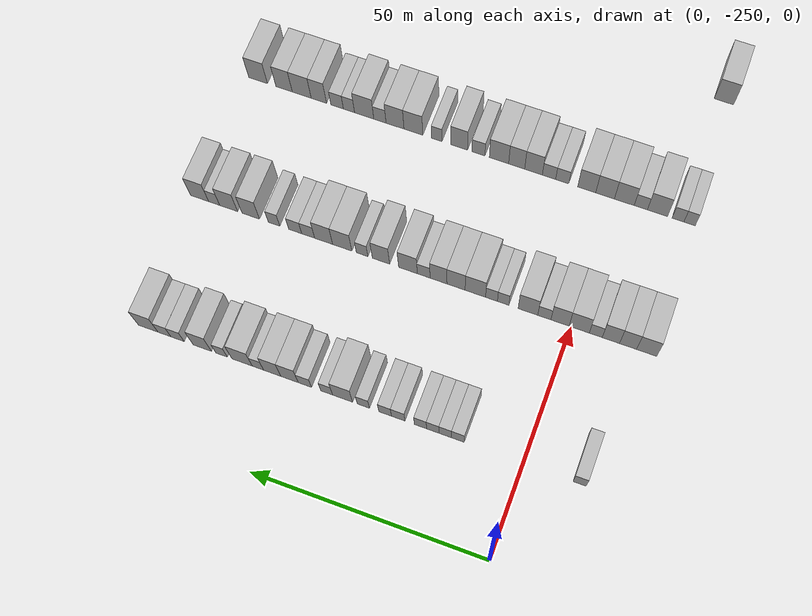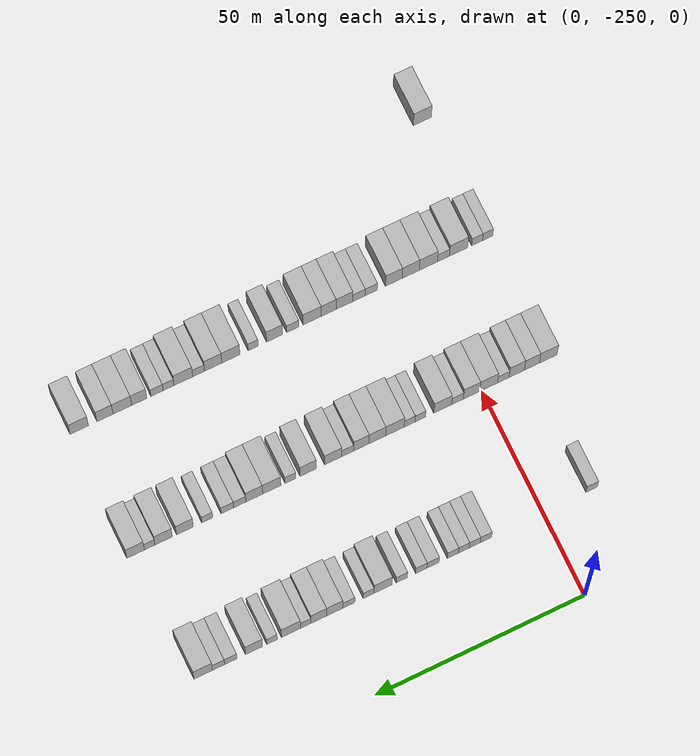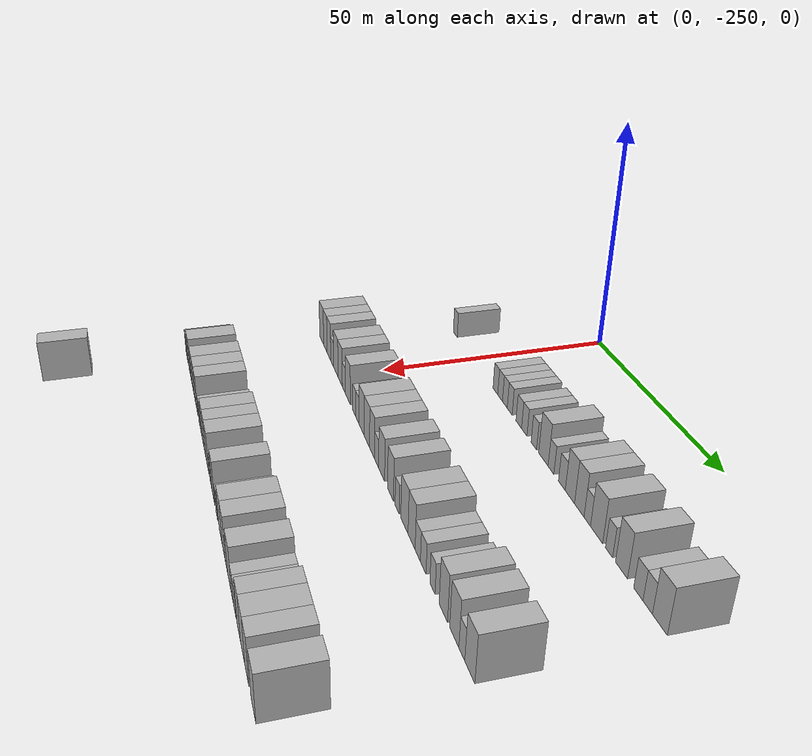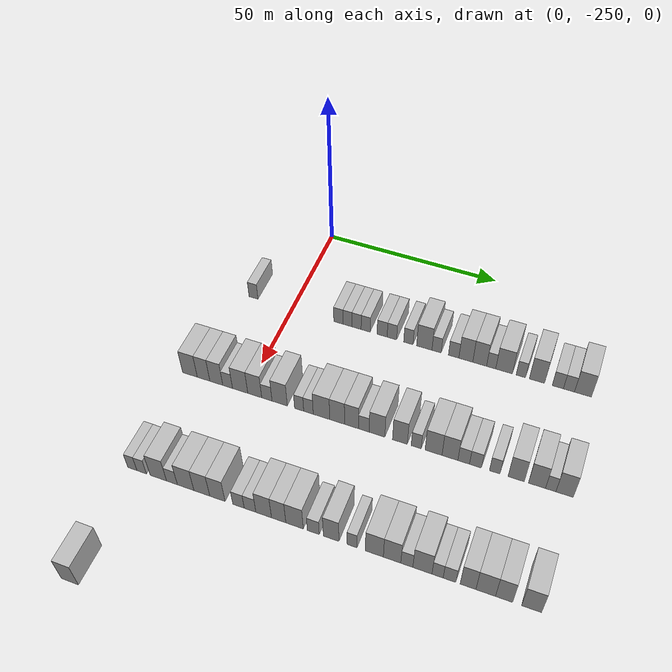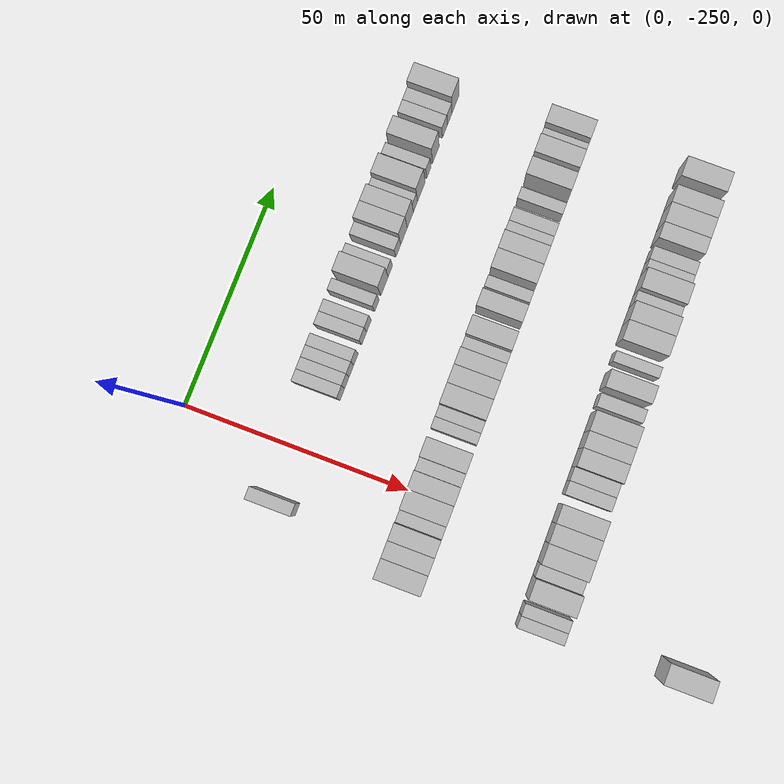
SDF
<sdf version="1.6">
 <world name="default">
  <model name="building_50">
   <static>1</static>
   <pose>25.0000 -261.6594 0 0.000000 0.000000 0.000000</pose>
   <link name="link">
    <pose>0 0 3.00 0 0 0</pose>
    <collision name="collision"><geometry><box><size>10.0000 2.7300 6.0000</size></box></geometry></collision>
    <visual name="visual">
     <cast_shadows>0</cast_shadows>
     <geometry><box><size>10.0000 2.7300 6.0000</size></box></geometry>
     <material>
      <script>
       <uri>model://HANNAS_wall/materials/scripts</uri>
       <uri>model://HANNAS_wall/materials/textures</uri>
       <name>vrc/HANNAS_wall</name>
      </script>
     </material>
    </visual>
   </link>
  </model>
  <model name="building_51">
   <static>1</static>
   <pose>25.0000 -236.2461 0 0.000000 0.000000 0.000000</pose>
   <link name="link">
    <pose>0 0 3.00 0 0 0</pose>
    <collision name="collision"><geometry><box><size>10.0000 2.6988 6.0000</size></box></geometry></collision>
    <visual name="visual">
     <cast_shadows>0</cast_shadows>
     <geometry><box><size>10.0000 2.6988 6.0000</size></box></geometry>
     <material>
      <script>
       <uri>model://HANNAS_wall/materials/scripts</uri>
       <uri>model://HANNAS_wall/materials/textures</uri>
       <name>vrc/HANNAS_wall</name>
      </script>
     </material>
    </visual>
   </link>
  </model>
  <model name="building_52">
   <static>1</static>
   <pose>25.0000 -233.5793 0 0.000000 0.000000 0.000000</pose>
   <link name="link">
    <pose>0 0 3.00 0 0 0</pose>
    <collision name="collision"><geometry><box><size>10.0000 2.6348 6.0000</size></box></geometry></collision>
    <visual name="visual">
     <cast_shadows>0</cast_shadows>
     <geometry><box><size>10.0000 2.6348 6.0000</size></box></geometry>
     <material>
      <script>
       <uri>model://HANNAS_wall/materials/scripts</uri>
       <uri>model://HANNAS_wall/materials/textures</uri>
       <name>vrc/HANNAS_wall</name>
      </script>
     </material>
    </visual>
   </link>
  </model>
  <model name="building_53">
   <static>1</static>
   <pose>25.0000 -230.9478 0 0.000000 0.000000 0.000000</pose>
   <link name="link">
    <pose>0 0 3.00 0 0 0</pose>
    <collision name="collision"><geometry><box><size>10.0000 2.6281 6.0000</size></box></geometry></collision>
    <visual name="visual">
     <cast_shadows>0</cast_shadows>
     <geometry><box><size>10.0000 2.6281 6.0000</size></box></geometry>
     <material>
      <script>
       <uri>model://HANNAS_wall/materials/scripts</uri>
       <uri>model://HANNAS_wall/materials/textures</uri>
       <name>vrc/HANNAS_wall</name>
      </script>
     </material>
    </visual>
   </link>
  </model>
  <model name="building_54">
   <static>1</static>
   <pose>25.0000 -228.3338 0 0.000000 0.000000 0.000000</pose>
   <link name="link">
    <pose>0 0 3.00 0 0 0</pose>
    <collision name="collision"><geometry><box><size>10.0000 2.5999 6.0000</size></box></geometry></collision>
    <visual name="visual">
     <cast_shadows>0</cast_shadows>
     <geometry><box><size>10.0000 2.5999 6.0000</size></box></geometry>
     <material>
      <script>
       <uri>model://HANNAS_wall/materials/scripts</uri>
       <uri>model://HANNAS_wall/materials/textures</uri>
       <name>vrc/HANNAS_wall</name>
      </script>
     </material>
    </visual>
   </link>
  </model>
  <model name="building_55">
   <static>1</static>
   <pose>25.0000 -223.5923 0 0.000000 0.000000 0.000000</pose>
   <link name="link">
    <pose>0 0 3.00 0 0 0</pose>
    <collision name="collision"><geometry><box><size>10.0000 2.8830 6.0000</size></box></geometry></collision>
    <visual name="visual">
     <cast_shadows>0</cast_shadows>
     <geometry><box><size>10.0000 2.8830 6.0000</size></box></geometry>
     <material>
      <script>
       <uri>model://HANNAS_wall/materials/scripts</uri>
       <uri>model://HANNAS_wall/materials/textures</uri>
       <name>vrc/HANNAS_wall</name>
      </script>
     </material>
    </visual>
   </link>
  </model>
  <model name="building_56">
   <static>1</static>
   <pose>25.0000 -220.8001 0 0.000000 0.000000 0.000000</pose>
   <link name="link">
    <pose>0 0 3.00 0 0 0</pose>
    <collision name="collision"><geometry><box><size>10.0000 2.7013 6.0000</size></box></geometry></collision>
    <visual name="visual">
     <cast_shadows>0</cast_shadows>
     <geometry><box><size>10.0000 2.7013 6.0000</size></box></geometry>
     <material>
      <script>
       <uri>model://HANNAS_wall/materials/scripts</uri>
       <uri>model://HANNAS_wall/materials/textures</uri>
       <name>vrc/HANNAS_wall</name>
      </script>
     </material>
    </visual>
   </link>
  </model>
  <model name="building_57">
   <static>1</static>
   <pose>25.0000 -216.1334 0 0.000000 0.000000 0.000000</pose>
   <link name="link">
    <pose>0 0 3.00 0 0 0</pose>
    <collision name="collision"><geometry><box><size>10.0000 2.6322 6.0000</size></box></geometry></collision>
    <visual name="visual">
     <cast_shadows>0</cast_shadows>
     <geometry><box><size>10.0000 2.6322 6.0000</size></box></geometry>
     <material>
      <script>
       <uri>model://HANNAS_wall/materials/scripts</uri>
       <uri>model://HANNAS_wall/materials/textures</uri>
       <name>vrc/HANNAS_wall</name>
      </script>
     </material>
    </visual>
   </link>
  </model>
  <model name="building_58">
   <static>1</static>
   <pose>25.0000 -211.6618 0 0.000000 0.000000 0.000000</pose>
   <link name="link">
    <pose>0 0 4.50 0 0 0</pose>
    <collision name="collision"><geometry><box><size>10.0000 4.3110 9.0000</size></box></geometry></collision>
    <visual name="visual">
     <cast_shadows>0</cast_shadows>
     <geometry><box><size>10.0000 4.3110 9.0000</size></box></geometry>
     <material>
      <script>
       <uri>model://HANNAS_wall/materials/scripts</uri>
       <uri>model://HANNAS_wall/materials/textures</uri>
       <name>vrc/HANNAS_wall</name>
      </script>
     </material>
    </visual>
   </link>
  </model>
  <model name="building_59">
   <static>1</static>
   <pose>25.0000 -208.2244 0 0.000000 0.000000 0.000000</pose>
   <link name="link">
    <pose>0 0 3.00 0 0 0</pose>
    <collision name="collision"><geometry><box><size>10.0000 2.5638 6.0000</size></box></geometry></collision>
    <visual name="visual">
     <cast_shadows>0</cast_shadows>
     <geometry><box><size>10.0000 2.5638 6.0000</size></box></geometry>
     <material>
      <script>
       <uri>model://HANNAS_wall/materials/scripts</uri>
       <uri>model://HANNAS_wall/materials/textures</uri>
       <name>vrc/HANNAS_wall</name>
      </script>
     </material>
    </visual>
   </link>
  </model>
  <model name="building_60">
   <static>1</static>
   <pose>25.0000 -203.4989 0 0.000000 0.000000 0.000000</pose>
   <link name="link">
    <pose>0 0 3.00 0 0 0</pose>
    <collision name="collision"><geometry><box><size>10.0000 2.8872 6.0000</size></box></geometry></collision>
    <visual name="visual">
     <cast_shadows>0</cast_shadows>
     <geometry><box><size>10.0000 2.8872 6.0000</size></box></geometry>
     <material>
      <script>
       <uri>model://HANNAS_wall/materials/scripts</uri>
       <uri>model://HANNAS_wall/materials/textures</uri>
       <name>vrc/HANNAS_wall</name>
      </script>
     </material>
    </visual>
   </link>
  </model>
  <model name="building_61">
   <static>1</static>
   <pose>25.0000 -200.1517 0 0.000000 0.000000 0.000000</pose>
   <link name="link">
    <pose>0 0 4.50 0 0 0</pose>
    <collision name="collision"><geometry><box><size>10.0000 3.8070 9.0000</size></box></geometry></collision>
    <visual name="visual">
     <cast_shadows>0</cast_shadows>
     <geometry><box><size>10.0000 3.8070 9.0000</size></box></geometry>
     <material>
      <script>
       <uri>model://HANNAS_wall/materials/scripts</uri>
       <uri>model://HANNAS_wall/materials/textures</uri>
       <name>vrc/HANNAS_wall</name>
      </script>
     </material>
    </visual>
   </link>
  </model>
  <model name="building_62">
   <static>1</static>
   <pose>25.0000 -196.3673 0 0.000000 0.000000 0.000000</pose>
   <link name="link">
    <pose>0 0 4.50 0 0 0</pose>
    <collision name="collision"><geometry><box><size>10.0000 3.7619 9.0000</size></box></geometry></collision>
    <visual name="visual">
     <cast_shadows>0</cast_shadows>
     <geometry><box><size>10.0000 3.7619 9.0000</size></box></geometry>
     <material>
      <script>
       <uri>model://HANNAS_wall/materials/scripts</uri>
       <uri>model://HANNAS_wall/materials/textures</uri>
       <name>vrc/HANNAS_wall</name>
      </script>
     </material>
    </visual>
   </link>
  </model>
  <model name="building_63">
   <static>1</static>
   <pose>25.0000 -193.2477 0 0.000000 0.000000 0.000000</pose>
   <link name="link">
    <pose>0 0 3.00 0 0 0</pose>
    <collision name="collision"><geometry><box><size>10.0000 2.4773 6.0000</size></box></geometry></collision>
    <visual name="visual">
     <cast_shadows>0</cast_shadows>
     <geometry><box><size>10.0000 2.4773 6.0000</size></box></geometry>
     <material>
      <script>
       <uri>model://HANNAS_wall/materials/scripts</uri>
       <uri>model://HANNAS_wall/materials/textures</uri>
       <name>vrc/HANNAS_wall</name>
      </script>
     </material>
    </visual>
   </link>
  </model>
  <model name="building_64">
   <static>1</static>
   <pose>25.0000 -189.7666 0 0.000000 0.000000 0.000000</pose>
   <link name="link">
    <pose>0 0 4.50 0 0 0</pose>
    <collision name="collision"><geometry><box><size>10.0000 4.4851 9.0000</size></box></geometry></collision>
    <visual name="visual">
     <cast_shadows>0</cast_shadows>
     <geometry><box><size>10.0000 4.4851 9.0000</size></box></geometry>
     <material>
      <script>
       <uri>model://HANNAS_wall/materials/scripts</uri>
       <uri>model://HANNAS_wall/materials/textures</uri>
       <name>vrc/HANNAS_wall</name>
      </script>
     </material>
    </visual>
   </link>
  </model>
  <model name="building_65">
   <static>1</static>
   <pose>25.0000 -185.2671 0 0.000000 0.000000 0.000000</pose>
   <link name="link">
    <pose>0 0 3.00 0 0 0</pose>
    <collision name="collision"><geometry><box><size>10.0000 2.5139 6.0000</size></box></geometry></collision>
    <visual name="visual">
     <cast_shadows>0</cast_shadows>
     <geometry><box><size>10.0000 2.5139 6.0000</size></box></geometry>
     <material>
      <script>
       <uri>model://HANNAS_wall/materials/scripts</uri>
       <uri>model://HANNAS_wall/materials/textures</uri>
       <name>vrc/HANNAS_wall</name>
      </script>
     </material>
    </visual>
   </link>
  </model>
  <model name="building_66">
   <static>1</static>
   <pose>25.0000 -180.9905 0 0.000000 0.000000 0.000000</pose>
   <link name="link">
    <pose>0 0 4.50 0 0 0</pose>
    <collision name="collision"><geometry><box><size>10.0000 4.0393 9.0000</size></box></geometry></collision>
    <visual name="visual">
     <cast_shadows>0</cast_shadows>
     <geometry><box><size>10.0000 4.0393 9.0000</size></box></geometry>
     <material>
      <script>
       <uri>model://HANNAS_wall/materials/scripts</uri>
       <uri>model://HANNAS_wall/materials/textures</uri>
       <name>vrc/HANNAS_wall</name>
      </script>
     </material>
    </visual>
   </link>
  </model>
  <model name="building_67">
   <static>1</static>
   <pose>25.0000 -175.5025 0 0.000000 0.000000 0.000000</pose>
   <link name="link">
    <pose>0 0 3.00 0 0 0</pose>
    <collision name="collision"><geometry><box><size>10.0000 2.9368 6.0000</size></box></geometry></collision>
    <visual name="visual">
     <cast_shadows>0</cast_shadows>
     <geometry><box><size>10.0000 2.9368 6.0000</size></box></geometry>
     <material>
      <script>
       <uri>model://HANNAS_wall/materials/scripts</uri>
       <uri>model://HANNAS_wall/materials/textures</uri>
       <name>vrc/HANNAS_wall</name>
      </script>
     </material>
    </visual>
   </link>
  </model>
  <model name="building_68">
   <static>1</static>
   <pose>25.0000 -172.5925 0 0.000000 0.000000 0.000000</pose>
   <link name="link">
    <pose>0 0 3.00 0 0 0</pose>
    <collision name="collision"><geometry><box><size>10.0000 2.8830 6.0000</size></box></geometry></collision>
    <visual name="visual">
     <cast_shadows>0</cast_shadows>
     <geometry><box><size>10.0000 2.8830 6.0000</size></box></geometry>
     <material>
      <script>
       <uri>model://HANNAS_wall/materials/scripts</uri>
       <uri>model://HANNAS_wall/materials/textures</uri>
       <name>vrc/HANNAS_wall</name>
      </script>
     </material>
    </visual>
   </link>
  </model>
  <model name="building_69">
   <static>1</static>
   <pose>25.0000 -168.9584 0 0.000000 0.000000 0.000000</pose>
   <link name="link">
    <pose>0 0 4.50 0 0 0</pose>
    <collision name="collision"><geometry><box><size>10.0000 4.3853 9.0000</size></box></geometry></collision>
    <visual name="visual">
     <cast_shadows>0</cast_shadows>
     <geometry><box><size>10.0000 4.3853 9.0000</size></box></geometry>
     <material>
      <script>
       <uri>model://HANNAS_wall/materials/scripts</uri>
       <uri>model://HANNAS_wall/materials/textures</uri>
       <name>vrc/HANNAS_wall</name>
      </script>
     </material>
    </visual>
   </link>
  </model>
  <model name="building_277">
   <static>1</static>
   <pose>55.0000 -266.1159 0 0.000000 0.000000 0.000000</pose>
   <link name="link">
    <pose>0 0 4.50 0 0 0</pose>
    <collision name="collision"><geometry><box><size>10.0000 4.2751 9.0000</size></box></geometry></collision>
    <visual name="visual">
     <cast_shadows>0</cast_shadows>
     <geometry><box><size>10.0000 4.2751 9.0000</size></box></geometry>
     <material>
      <script>
       <uri>model://HANNAS_wall/materials/scripts</uri>
       <uri>model://HANNAS_wall/materials/textures</uri>
       <name>vrc/HANNAS_wall</name>
      </script>
     </material>
    </visual>
   </link>
  </model>
  <model name="building_278">
   <static>1</static>
   <pose>55.0000 -262.1607 0 0.000000 0.000000 0.000000</pose>
   <link name="link">
    <pose>0 0 4.50 0 0 0</pose>
    <collision name="collision"><geometry><box><size>10.0000 3.6353 9.0000</size></box></geometry></collision>
    <visual name="visual">
     <cast_shadows>0</cast_shadows>
     <geometry><box><size>10.0000 3.6353 9.0000</size></box></geometry>
     <material>
      <script>
       <uri>model://HANNAS_wall/materials/scripts</uri>
       <uri>model://HANNAS_wall/materials/textures</uri>
       <name>vrc/HANNAS_wall</name>
      </script>
     </material>
    </visual>
   </link>
  </model>
  <model name="building_279">
   <static>1</static>
   <pose>55.0000 -258.4951 0 0.000000 0.000000 0.000000</pose>
   <link name="link">
    <pose>0 0 4.50 0 0 0</pose>
    <collision name="collision"><geometry><box><size>10.0000 3.6959 9.0000</size></box></geometry></collision>
    <visual name="visual">
     <cast_shadows>0</cast_shadows>
     <geometry><box><size>10.0000 3.6959 9.0000</size></box></geometry>
     <material>
      <script>
       <uri>model://HANNAS_wall/materials/scripts</uri>
       <uri>model://HANNAS_wall/materials/textures</uri>
       <name>vrc/HANNAS_wall</name>
      </script>
     </material>
    </visual>
   </link>
  </model>
  <model name="building_280">
   <static>1</static>
   <pose>55.0000 -255.2587 0 0.000000 0.000000 0.000000</pose>
   <link name="link">
    <pose>0 0 3.00 0 0 0</pose>
    <collision name="collision"><geometry><box><size>10.0000 2.7768 6.0000</size></box></geometry></collision>
    <visual name="visual">
     <cast_shadows>0</cast_shadows>
     <geometry><box><size>10.0000 2.7768 6.0000</size></box></geometry>
     <material>
      <script>
       <uri>model://HANNAS_wall/materials/scripts</uri>
       <uri>model://HANNAS_wall/materials/textures</uri>
       <name>vrc/HANNAS_wall</name>
      </script>
     </material>
    </visual>
   </link>
  </model>
  <model name="building_281">
   <static>1</static>
   <pose>55.0000 -251.7073 0 0.000000 0.000000 0.000000</pose>
   <link name="link">
    <pose>0 0 4.50 0 0 0</pose>
    <collision name="collision"><geometry><box><size>10.0000 4.3260 9.0000</size></box></geometry></collision>
    <visual name="visual">
     <cast_shadows>0</cast_shadows>
     <geometry><box><size>10.0000 4.3260 9.0000</size></box></geometry>
     <material>
      <script>
       <uri>model://HANNAS_wall/materials/scripts</uri>
       <uri>model://HANNAS_wall/materials/textures</uri>
       <name>vrc/HANNAS_wall</name>
      </script>
     </material>
    </visual>
   </link>
  </model>
  <model name="building_282">
   <static>1</static>
   <pose>55.0000 -247.5823 0 0.000000 0.000000 0.000000</pose>
   <link name="link">
    <pose>0 0 4.50 0 0 0</pose>
    <collision name="collision"><geometry><box><size>10.0000 3.9239 9.0000</size></box></geometry></collision>
    <visual name="visual">
     <cast_shadows>0</cast_shadows>
     <geometry><box><size>10.0000 3.9239 9.0000</size></box></geometry>
     <material>
      <script>
       <uri>model://HANNAS_wall/materials/scripts</uri>
       <uri>model://HANNAS_wall/materials/textures</uri>
       <name>vrc/HANNAS_wall</name>
      </script>
     </material>
    </visual>
   </link>
  </model>
  <model name="building_283">
   <static>1</static>
   <pose>55.0000 -244.1858 0 0.000000 0.000000 0.000000</pose>
   <link name="link">
    <pose>0 0 3.00 0 0 0</pose>
    <collision name="collision"><geometry><box><size>10.0000 2.8692 6.0000</size></box></geometry></collision>
    <visual name="visual">
     <cast_shadows>0</cast_shadows>
     <geometry><box><size>10.0000 2.8692 6.0000</size></box></geometry>
     <material>
      <script>
       <uri>model://HANNAS_wall/materials/scripts</uri>
       <uri>model://HANNAS_wall/materials/textures</uri>
       <name>vrc/HANNAS_wall</name>
      </script>
     </material>
    </visual>
   </link>
  </model>
  <model name="building_284">
   <static>1</static>
   <pose>55.0000 -240.6268 0 0.000000 0.000000 0.000000</pose>
   <link name="link">
    <pose>0 0 4.50 0 0 0</pose>
    <collision name="collision"><geometry><box><size>10.0000 4.2486 9.0000</size></box></geometry></collision>
    <visual name="visual">
     <cast_shadows>0</cast_shadows>
     <geometry><box><size>10.0000 4.2486 9.0000</size></box></geometry>
     <material>
      <script>
       <uri>model://HANNAS_wall/materials/scripts</uri>
       <uri>model://HANNAS_wall/materials/textures</uri>
       <name>vrc/HANNAS_wall</name>
      </script>
     </material>
    </visual>
   </link>
  </model>
  <model name="building_285">
   <static>1</static>
   <pose>55.0000 -235.2520 0 0.000000 0.000000 0.000000</pose>
   <link name="link">
    <pose>0 0 3.00 0 0 0</pose>
    <collision name="collision"><geometry><box><size>10.0000 2.5011 6.0000</size></box></geometry></collision>
    <visual name="visual">
     <cast_shadows>0</cast_shadows>
     <geometry><box><size>10.0000 2.5011 6.0000</size></box></geometry>
     <material>
      <script>
       <uri>model://HANNAS_wall/materials/scripts</uri>
       <uri>model://HANNAS_wall/materials/textures</uri>
       <name>vrc/HANNAS_wall</name>
      </script>
     </material>
    </visual>
   </link>
  </model>
  <model name="building_286">
   <static>1</static>
   <pose>55.0000 -232.7032 0 0.000000 0.000000 0.000000</pose>
   <link name="link">
    <pose>0 0 3.00 0 0 0</pose>
    <collision name="collision"><geometry><box><size>10.0000 2.5964 6.0000</size></box></geometry></collision>
    <visual name="visual">
     <cast_shadows>0</cast_shadows>
     <geometry><box><size>10.0000 2.5964 6.0000</size></box></geometry>
     <material>
      <script>
       <uri>model://HANNAS_wall/materials/scripts</uri>
       <uri>model://HANNAS_wall/materials/textures</uri>
       <name>vrc/HANNAS_wall</name>
      </script>
     </material>
    </visual>
   </link>
  </model>
  <model name="building_287">
   <static>1</static>
   <pose>55.0000 -229.1664 0 0.000000 0.000000 0.000000</pose>
   <link name="link">
    <pose>0 0 4.50 0 0 0</pose>
    <collision name="collision"><geometry><box><size>10.0000 4.4774 9.0000</size></box></geometry></collision>
    <visual name="visual">
     <cast_shadows>0</cast_shadows>
     <geometry><box><size>10.0000 4.4774 9.0000</size></box></geometry>
     <material>
      <script>
       <uri>model://HANNAS_wall/materials/scripts</uri>
       <uri>model://HANNAS_wall/materials/textures</uri>
       <name>vrc/HANNAS_wall</name>
      </script>
     </material>
    </visual>
   </link>
  </model>
  <model name="building_288">
   <static>1</static>
   <pose>55.0000 -224.9325 0 0.000000 0.000000 0.000000</pose>
   <link name="link">
    <pose>0 0 4.50 0 0 0</pose>
    <collision name="collision"><geometry><box><size>10.0000 3.9903 9.0000</size></box></geometry></collision>
    <visual name="visual">
     <cast_shadows>0</cast_shadows>
     <geometry><box><size>10.0000 3.9903 9.0000</size></box></geometry>
     <material>
      <script>
       <uri>model://HANNAS_wall/materials/scripts</uri>
       <uri>model://HANNAS_wall/materials/textures</uri>
       <name>vrc/HANNAS_wall</name>
      </script>
     </material>
    </visual>
   </link>
  </model>
  <model name="building_289">
   <static>1</static>
   <pose>55.0000 -221.0817 0 0.000000 0.000000 0.000000</pose>
   <link name="link">
    <pose>0 0 4.50 0 0 0</pose>
    <collision name="collision"><geometry><box><size>10.0000 3.7114 9.0000</size></box></geometry></collision>
    <visual name="visual">
     <cast_shadows>0</cast_shadows>
     <geometry><box><size>10.0000 3.7114 9.0000</size></box></geometry>
     <material>
      <script>
       <uri>model://HANNAS_wall/materials/scripts</uri>
       <uri>model://HANNAS_wall/materials/textures</uri>
       <name>vrc/HANNAS_wall</name>
      </script>
     </material>
    </visual>
   </link>
  </model>
  <model name="building_290">
   <static>1</static>
   <pose>55.0000 -217.8124 0 0.000000 0.000000 0.000000</pose>
   <link name="link">
    <pose>0 0 3.00 0 0 0</pose>
    <collision name="collision"><geometry><box><size>10.0000 2.8272 6.0000</size></box></geometry></collision>
    <visual name="visual">
     <cast_shadows>0</cast_shadows>
     <geometry><box><size>10.0000 2.8272 6.0000</size></box></geometry>
     <material>
      <script>
       <uri>model://HANNAS_wall/materials/scripts</uri>
       <uri>model://HANNAS_wall/materials/textures</uri>
       <name>vrc/HANNAS_wall</name>
      </script>
     </material>
    </visual>
   </link>
  </model>
  <model name="building_291">
   <static>1</static>
   <pose>55.0000 -214.3256 0 0.000000 0.000000 0.000000</pose>
   <link name="link">
    <pose>0 0 4.50 0 0 0</pose>
    <collision name="collision"><geometry><box><size>10.0000 4.1464 9.0000</size></box></geometry></collision>
    <visual name="visual">
     <cast_shadows>0</cast_shadows>
     <geometry><box><size>10.0000 4.1464 9.0000</size></box></geometry>
     <material>
      <script>
       <uri>model://HANNAS_wall/materials/scripts</uri>
       <uri>model://HANNAS_wall/materials/textures</uri>
       <name>vrc/HANNAS_wall</name>
      </script>
     </material>
    </visual>
   </link>
  </model>
  <model name="building_292">
   <static>1</static>
   <pose>55.0000 -208.3234 0 0.000000 0.000000 0.000000</pose>
   <link name="link">
    <pose>0 0 4.50 0 0 0</pose>
    <collision name="collision"><geometry><box><size>10.0000 3.8582 9.0000</size></box></geometry></collision>
    <visual name="visual">
     <cast_shadows>0</cast_shadows>
     <geometry><box><size>10.0000 3.8582 9.0000</size></box></geometry>
     <material>
      <script>
       <uri>model://HANNAS_wall/materials/scripts</uri>
       <uri>model://HANNAS_wall/materials/textures</uri>
       <name>vrc/HANNAS_wall</name>
      </script>
     </material>
    </visual>
   </link>
  </model>
  <model name="building_293">
   <static>1</static>
   <pose>55.0000 -204.1035 0 0.000000 0.000000 0.000000</pose>
   <link name="link">
    <pose>0 0 3.00 0 0 0</pose>
    <collision name="collision"><geometry><box><size>10.0000 2.5815 6.0000</size></box></geometry></collision>
    <visual name="visual">
     <cast_shadows>0</cast_shadows>
     <geometry><box><size>10.0000 2.5815 6.0000</size></box></geometry>
     <material>
      <script>
       <uri>model://HANNAS_wall/materials/scripts</uri>
       <uri>model://HANNAS_wall/materials/textures</uri>
       <name>vrc/HANNAS_wall</name>
      </script>
     </material>
    </visual>
   </link>
  </model>
  <model name="building_294">
   <static>1</static>
   <pose>55.0000 -199.6501 0 0.000000 0.000000 0.000000</pose>
   <link name="link">
    <pose>0 0 4.50 0 0 0</pose>
    <collision name="collision"><geometry><box><size>10.0000 4.3254 9.0000</size></box></geometry></collision>
    <visual name="visual">
     <cast_shadows>0</cast_shadows>
     <geometry><box><size>10.0000 4.3254 9.0000</size></box></geometry>
     <material>
      <script>
       <uri>model://HANNAS_wall/materials/scripts</uri>
       <uri>model://HANNAS_wall/materials/textures</uri>
       <name>vrc/HANNAS_wall</name>
      </script>
     </material>
    </visual>
   </link>
  </model>
  <model name="building_295">
   <static>1</static>
   <pose>55.0000 -195.4699 0 0.000000 0.000000 0.000000</pose>
   <link name="link">
    <pose>0 0 4.50 0 0 0</pose>
    <collision name="collision"><geometry><box><size>10.0000 4.0350 9.0000</size></box></geometry></collision>
    <visual name="visual">
     <cast_shadows>0</cast_shadows>
     <geometry><box><size>10.0000 4.0350 9.0000</size></box></geometry>
     <material>
      <script>
       <uri>model://HANNAS_wall/materials/scripts</uri>
       <uri>model://HANNAS_wall/materials/textures</uri>
       <name>vrc/HANNAS_wall</name>
      </script>
     </material>
    </visual>
   </link>
  </model>
  <model name="building_296">
   <static>1</static>
   <pose>55.0000 -191.9846 0 0.000000 0.000000 0.000000</pose>
   <link name="link">
    <pose>0 0 3.00 0 0 0</pose>
    <collision name="collision"><geometry><box><size>10.0000 2.9356 6.0000</size></box></geometry></collision>
    <visual name="visual">
     <cast_shadows>0</cast_shadows>
     <geometry><box><size>10.0000 2.9356 6.0000</size></box></geometry>
     <material>
      <script>
       <uri>model://HANNAS_wall/materials/scripts</uri>
       <uri>model://HANNAS_wall/materials/textures</uri>
       <name>vrc/HANNAS_wall</name>
      </script>
     </material>
    </visual>
   </link>
  </model>
  <model name="building_297">
   <static>1</static>
   <pose>55.0000 -189.0295 0 0.000000 0.000000 0.000000</pose>
   <link name="link">
    <pose>0 0 3.00 0 0 0</pose>
    <collision name="collision"><geometry><box><size>10.0000 2.9745 6.0000</size></box></geometry></collision>
    <visual name="visual">
     <cast_shadows>0</cast_shadows>
     <geometry><box><size>10.0000 2.9745 6.0000</size></box></geometry>
     <material>
      <script>
       <uri>model://HANNAS_wall/materials/scripts</uri>
       <uri>model://HANNAS_wall/materials/textures</uri>
       <name>vrc/HANNAS_wall</name>
      </script>
     </material>
    </visual>
   </link>
  </model>
  <model name="building_298">
   <static>1</static>
   <pose>55.0000 -184.2369 0 0.000000 0.000000 0.000000</pose>
   <link name="link">
    <pose>0 0 3.00 0 0 0</pose>
    <collision name="collision"><geometry><box><size>10.0000 2.6106 6.0000</size></box></geometry></collision>
    <visual name="visual">
     <cast_shadows>0</cast_shadows>
     <geometry><box><size>10.0000 2.6106 6.0000</size></box></geometry>
     <material>
      <script>
       <uri>model://HANNAS_wall/materials/scripts</uri>
       <uri>model://HANNAS_wall/materials/textures</uri>
       <name>vrc/HANNAS_wall</name>
      </script>
     </material>
    </visual>
   </link>
  </model>
  <model name="building_299">
   <static>1</static>
   <pose>55.0000 -178.9319 0 0.000000 0.000000 0.000000</pose>
   <link name="link">
    <pose>0 0 4.50 0 0 0</pose>
    <collision name="collision"><geometry><box><size>10.0000 3.9995 9.0000</size></box></geometry></collision>
    <visual name="visual">
     <cast_shadows>0</cast_shadows>
     <geometry><box><size>10.0000 3.9995 9.0000</size></box></geometry>
     <material>
      <script>
       <uri>model://HANNAS_wall/materials/scripts</uri>
       <uri>model://HANNAS_wall/materials/textures</uri>
       <name>vrc/HANNAS_wall</name>
      </script>
     </material>
    </visual>
   </link>
  </model>
  <model name="building_300">
   <static>1</static>
   <pose>55.0000 -173.8704 0 0.000000 0.000000 0.000000</pose>
   <link name="link">
    <pose>0 0 4.50 0 0 0</pose>
    <collision name="collision"><geometry><box><size>10.0000 4.1233 9.0000</size></box></geometry></collision>
    <visual name="visual">
     <cast_shadows>0</cast_shadows>
     <geometry><box><size>10.0000 4.1233 9.0000</size></box></geometry>
     <material>
      <script>
       <uri>model://HANNAS_wall/materials/scripts</uri>
       <uri>model://HANNAS_wall/materials/textures</uri>
       <name>vrc/HANNAS_wall</name>
      </script>
     </material>
    </visual>
   </link>
  </model>
  <model name="building_301">
   <static>1</static>
   <pose>55.0000 -170.5412 0 0.000000 0.000000 0.000000</pose>
   <link name="link">
    <pose>0 0 3.00 0 0 0</pose>
    <collision name="collision"><geometry><box><size>10.0000 2.5351 6.0000</size></box></geometry></collision>
    <visual name="visual">
     <cast_shadows>0</cast_shadows>
     <geometry><box><size>10.0000 2.5351 6.0000</size></box></geometry>
     <material>
      <script>
       <uri>model://HANNAS_wall/materials/scripts</uri>
       <uri>model://HANNAS_wall/materials/textures</uri>
       <name>vrc/HANNAS_wall</name>
      </script>
     </material>
    </visual>
   </link>
  </model>
  <model name="building_302">
   <static>1</static>
   <pose>55.0000 -167.1949 0 0.000000 0.000000 0.000000</pose>
   <link name="link">
    <pose>0 0 4.50 0 0 0</pose>
    <collision name="collision"><geometry><box><size>10.0000 4.1576 9.0000</size></box></geometry></collision>
    <visual name="visual">
     <cast_shadows>0</cast_shadows>
     <geometry><box><size>10.0000 4.1576 9.0000</size></box></geometry>
     <material>
      <script>
       <uri>model://HANNAS_wall/materials/scripts</uri>
       <uri>model://HANNAS_wall/materials/textures</uri>
       <name>vrc/HANNAS_wall</name>
      </script>
     </material>
    </visual>
   </link>
  </model>
  <model name="building_511">
   <static>1</static>
   <pose>85.0000 -266.2553 0 0.000000 0.000000 0.000000</pose>
   <link name="link">
    <pose>0 0 3.00 0 0 0</pose>
    <collision name="collision"><geometry><box><size>10.0000 2.4940 6.0000</size></box></geometry></collision>
    <visual name="visual">
     <cast_shadows>0</cast_shadows>
     <geometry><box><size>10.0000 2.4940 6.0000</size></box></geometry>
     <material>
      <script>
       <uri>model://HANNAS_wall/materials/scripts</uri>
       <uri>model://HANNAS_wall/materials/textures</uri>
       <name>vrc/HANNAS_wall</name>
      </script>
     </material>
    </visual>
   </link>
  </model>
  <model name="building_512">
   <static>1</static>
   <pose>85.0000 -263.7135 0 0.000000 0.000000 0.000000</pose>
   <link name="link">
    <pose>0 0 3.00 0 0 0</pose>
    <collision name="collision"><geometry><box><size>10.0000 2.5896 6.0000</size></box></geometry></collision>
    <visual name="visual">
     <cast_shadows>0</cast_shadows>
     <geometry><box><size>10.0000 2.5896 6.0000</size></box></geometry>
     <material>
      <script>
       <uri>model://HANNAS_wall/materials/scripts</uri>
       <uri>model://HANNAS_wall/materials/textures</uri>
       <name>vrc/HANNAS_wall</name>
      </script>
     </material>
    </visual>
   </link>
  </model>
  <model name="building_513">
   <static>1</static>
   <pose>85.0000 -259.2016 0 0.000000 0.000000 0.000000</pose>
   <link name="link">
    <pose>0 0 4.50 0 0 0</pose>
    <collision name="collision"><geometry><box><size>10.0000 4.4343 9.0000</size></box></geometry></collision>
    <visual name="visual">
     <cast_shadows>0</cast_shadows>
     <geometry><box><size>10.0000 4.4343 9.0000</size></box></geometry>
     <material>
      <script>
       <uri>model://HANNAS_wall/materials/scripts</uri>
       <uri>model://HANNAS_wall/materials/textures</uri>
       <name>vrc/HANNAS_wall</name>
      </script>
     </material>
    </visual>
   </link>
  </model>
  <model name="building_514">
   <static>1</static>
   <pose>85.0000 -255.5310 0 0.000000 0.000000 0.000000</pose>
   <link name="link">
    <pose>0 0 3.00 0 0 0</pose>
    <collision name="collision"><geometry><box><size>10.0000 2.9070 6.0000</size></box></geometry></collision>
    <visual name="visual">
     <cast_shadows>0</cast_shadows>
     <geometry><box><size>10.0000 2.9070 6.0000</size></box></geometry>
     <material>
      <script>
       <uri>model://HANNAS_wall/materials/scripts</uri>
       <uri>model://HANNAS_wall/materials/textures</uri>
       <name>vrc/HANNAS_wall</name>
      </script>
     </material>
    </visual>
   </link>
  </model>
  <model name="building_515">
   <static>1</static>
   <pose>85.0000 -251.8839 0 0.000000 0.000000 0.000000</pose>
   <link name="link">
    <pose>0 0 4.50 0 0 0</pose>
    <collision name="collision"><geometry><box><size>10.0000 4.3871 9.0000</size></box></geometry></collision>
    <visual name="visual">
     <cast_shadows>0</cast_shadows>
     <geometry><box><size>10.0000 4.3871 9.0000</size></box></geometry>
     <material>
      <script>
       <uri>model://HANNAS_wall/materials/scripts</uri>
       <uri>model://HANNAS_wall/materials/textures</uri>
       <name>vrc/HANNAS_wall</name>
      </script>
     </material>
    </visual>
   </link>
  </model>
  <model name="building_516">
   <static>1</static>
   <pose>85.0000 -247.6127 0 0.000000 0.000000 0.000000</pose>
   <link name="link">
    <pose>0 0 4.50 0 0 0</pose>
    <collision name="collision"><geometry><box><size>10.0000 4.1553 9.0000</size></box></geometry></collision>
    <visual name="visual">
     <cast_shadows>0</cast_shadows>
     <geometry><box><size>10.0000 4.1553 9.0000</size></box></geometry>
     <material>
      <script>
       <uri>model://HANNAS_wall/materials/scripts</uri>
       <uri>model://HANNAS_wall/materials/textures</uri>
       <name>vrc/HANNAS_wall</name>
      </script>
     </material>
    </visual>
   </link>
  </model>
  <model name="building_517">
   <static>1</static>
   <pose>85.0000 -243.5233 0 0.000000 0.000000 0.000000</pose>
   <link name="link">
    <pose>0 0 4.50 0 0 0</pose>
    <collision name="collision"><geometry><box><size>10.0000 4.0236 9.0000</size></box></geometry></collision>
    <visual name="visual">
     <cast_shadows>0</cast_shadows>
     <geometry><box><size>10.0000 4.0236 9.0000</size></box></geometry>
     <material>
      <script>
       <uri>model://HANNAS_wall/materials/scripts</uri>
       <uri>model://HANNAS_wall/materials/textures</uri>
       <name>vrc/HANNAS_wall</name>
      </script>
     </material>
    </visual>
   </link>
  </model>
  <model name="building_518">
   <static>1</static>
   <pose>85.0000 -238.0399 0 0.000000 0.000000 0.000000</pose>
   <link name="link">
    <pose>0 0 3.00 0 0 0</pose>
    <collision name="collision"><geometry><box><size>10.0000 2.9432 6.0000</size></box></geometry></collision>
    <visual name="visual">
     <cast_shadows>0</cast_shadows>
     <geometry><box><size>10.0000 2.9432 6.0000</size></box></geometry>
     <material>
      <script>
       <uri>model://HANNAS_wall/materials/scripts</uri>
       <uri>model://HANNAS_wall/materials/textures</uri>
       <name>vrc/HANNAS_wall</name>
      </script>
     </material>
    </visual>
   </link>
  </model>
  <model name="building_519">
   <static>1</static>
   <pose>85.0000 -235.0728 0 0.000000 0.000000 0.000000</pose>
   <link name="link">
    <pose>0 0 3.00 0 0 0</pose>
    <collision name="collision"><geometry><box><size>10.0000 2.9911 6.0000</size></box></geometry></collision>
    <visual name="visual">
     <cast_shadows>0</cast_shadows>
     <geometry><box><size>10.0000 2.9911 6.0000</size></box></geometry>
     <material>
      <script>
       <uri>model://HANNAS_wall/materials/scripts</uri>
       <uri>model://HANNAS_wall/materials/textures</uri>
       <name>vrc/HANNAS_wall</name>
      </script>
     </material>
    </visual>
   </link>
  </model>
  <model name="building_520">
   <static>1</static>
   <pose>85.0000 -231.5875 0 0.000000 0.000000 0.000000</pose>
   <link name="link">
    <pose>0 0 4.50 0 0 0</pose>
    <collision name="collision"><geometry><box><size>10.0000 3.9794 9.0000</size></box></geometry></collision>
    <visual name="visual">
     <cast_shadows>0</cast_shadows>
     <geometry><box><size>10.0000 3.9794 9.0000</size></box></geometry>
     <material>
      <script>
       <uri>model://HANNAS_wall/materials/scripts</uri>
       <uri>model://HANNAS_wall/materials/textures</uri>
       <name>vrc/HANNAS_wall</name>
      </script>
     </material>
    </visual>
   </link>
  </model>
  <model name="building_521">
   <static>1</static>
   <pose>85.0000 -227.7850 0 0.000000 0.000000 0.000000</pose>
   <link name="link">
    <pose>0 0 4.50 0 0 0</pose>
    <collision name="collision"><geometry><box><size>10.0000 3.6255 9.0000</size></box></geometry></collision>
    <visual name="visual">
     <cast_shadows>0</cast_shadows>
     <geometry><box><size>10.0000 3.6255 9.0000</size></box></geometry>
     <material>
      <script>
       <uri>model://HANNAS_wall/materials/scripts</uri>
       <uri>model://HANNAS_wall/materials/textures</uri>
       <name>vrc/HANNAS_wall</name>
      </script>
     </material>
    </visual>
   </link>
  </model>
  <model name="building_522">
   <static>1</static>
   <pose>85.0000 -223.7885 0 0.000000 0.000000 0.000000</pose>
   <link name="link">
    <pose>0 0 4.50 0 0 0</pose>
    <collision name="collision"><geometry><box><size>10.0000 4.3675 9.0000</size></box></geometry></collision>
    <visual name="visual">
     <cast_shadows>0</cast_shadows>
     <geometry><box><size>10.0000 4.3675 9.0000</size></box></geometry>
     <material>
      <script>
       <uri>model://HANNAS_wall/materials/scripts</uri>
       <uri>model://HANNAS_wall/materials/textures</uri>
       <name>vrc/HANNAS_wall</name>
      </script>
     </material>
    </visual>
   </link>
  </model>
  <model name="building_523">
   <static>1</static>
   <pose>85.0000 -219.1220 0 0.000000 0.000000 0.000000</pose>
   <link name="link">
    <pose>0 0 3.00 0 0 0</pose>
    <collision name="collision"><geometry><box><size>10.0000 2.9655 6.0000</size></box></geometry></collision>
    <visual name="visual">
     <cast_shadows>0</cast_shadows>
     <geometry><box><size>10.0000 2.9655 6.0000</size></box></geometry>
     <material>
      <script>
       <uri>model://HANNAS_wall/materials/scripts</uri>
       <uri>model://HANNAS_wall/materials/textures</uri>
       <name>vrc/HANNAS_wall</name>
      </script>
     </material>
    </visual>
   </link>
  </model>
  <model name="building_524">
   <static>1</static>
   <pose>85.0000 -214.7171 0 0.000000 0.000000 0.000000</pose>
   <link name="link">
    <pose>0 0 4.50 0 0 0</pose>
    <collision name="collision"><geometry><box><size>10.0000 3.8445 9.0000</size></box></geometry></collision>
    <visual name="visual">
     <cast_shadows>0</cast_shadows>
     <geometry><box><size>10.0000 3.8445 9.0000</size></box></geometry>
     <material>
      <script>
       <uri>model://HANNAS_wall/materials/scripts</uri>
       <uri>model://HANNAS_wall/materials/textures</uri>
       <name>vrc/HANNAS_wall</name>
      </script>
     </material>
    </visual>
   </link>
  </model>
  <model name="building_525">
   <static>1</static>
   <pose>85.0000 -209.5923 0 0.000000 0.000000 0.000000</pose>
   <link name="link">
    <pose>0 0 3.00 0 0 0</pose>
    <collision name="collision"><geometry><box><size>10.0000 2.4050 6.0000</size></box></geometry></collision>
    <visual name="visual">
     <cast_shadows>0</cast_shadows>
     <geometry><box><size>10.0000 2.4050 6.0000</size></box></geometry>
     <material>
      <script>
       <uri>model://HANNAS_wall/materials/scripts</uri>
       <uri>model://HANNAS_wall/materials/textures</uri>
       <name>vrc/HANNAS_wall</name>
      </script>
     </material>
    </visual>
   </link>
  </model>
  <model name="building_526">
   <static>1</static>
   <pose>85.0000 -204.2210 0 0.000000 0.000000 0.000000</pose>
   <link name="link">
    <pose>0 0 4.50 0 0 0</pose>
    <collision name="collision"><geometry><box><size>10.0000 4.3376 9.0000</size></box></geometry></collision>
    <visual name="visual">
     <cast_shadows>0</cast_shadows>
     <geometry><box><size>10.0000 4.3376 9.0000</size></box></geometry>
     <material>
      <script>
       <uri>model://HANNAS_wall/materials/scripts</uri>
       <uri>model://HANNAS_wall/materials/textures</uri>
       <name>vrc/HANNAS_wall</name>
      </script>
     </material>
    </visual>
   </link>
  </model>
  <model name="building_527">
   <static>1</static>
   <pose>85.0000 -199.9796 0 0.000000 0.000000 0.000000</pose>
   <link name="link">
    <pose>0 0 4.50 0 0 0</pose>
    <collision name="collision"><geometry><box><size>10.0000 4.1452 9.0000</size></box></geometry></collision>
    <visual name="visual">
     <cast_shadows>0</cast_shadows>
     <geometry><box><size>10.0000 4.1452 9.0000</size></box></geometry>
     <material>
      <script>
       <uri>model://HANNAS_wall/materials/scripts</uri>
       <uri>model://HANNAS_wall/materials/textures</uri>
       <name>vrc/HANNAS_wall</name>
      </script>
     </material>
    </visual>
   </link>
  </model>
  <model name="building_528">
   <static>1</static>
   <pose>85.0000 -196.4843 0 0.000000 0.000000 0.000000</pose>
   <link name="link">
    <pose>0 0 3.00 0 0 0</pose>
    <collision name="collision"><geometry><box><size>10.0000 2.8454 6.0000</size></box></geometry></collision>
    <visual name="visual">
     <cast_shadows>0</cast_shadows>
     <geometry><box><size>10.0000 2.8454 6.0000</size></box></geometry>
     <material>
      <script>
       <uri>model://HANNAS_wall/materials/scripts</uri>
       <uri>model://HANNAS_wall/materials/textures</uri>
       <name>vrc/HANNAS_wall</name>
      </script>
     </material>
    </visual>
   </link>
  </model>
  <model name="building_529">
   <static>1</static>
   <pose>85.0000 -192.8225 0 0.000000 0.000000 0.000000</pose>
   <link name="link">
    <pose>0 0 4.50 0 0 0</pose>
    <collision name="collision"><geometry><box><size>10.0000 4.4781 9.0000</size></box></geometry></collision>
    <visual name="visual">
     <cast_shadows>0</cast_shadows>
     <geometry><box><size>10.0000 4.4781 9.0000</size></box></geometry>
     <material>
      <script>
       <uri>model://HANNAS_wall/materials/scripts</uri>
       <uri>model://HANNAS_wall/materials/textures</uri>
       <name>vrc/HANNAS_wall</name>
      </script>
     </material>
    </visual>
   </link>
  </model>
  <model name="building_530">
   <static>1</static>
   <pose>85.0000 -189.2821 0 0.000000 0.000000 0.000000</pose>
   <link name="link">
    <pose>0 0 3.00 0 0 0</pose>
    <collision name="collision"><geometry><box><size>10.0000 2.6028 6.0000</size></box></geometry></collision>
    <visual name="visual">
     <cast_shadows>0</cast_shadows>
     <geometry><box><size>10.0000 2.6028 6.0000</size></box></geometry>
     <material>
      <script>
       <uri>model://HANNAS_wall/materials/scripts</uri>
       <uri>model://HANNAS_wall/materials/textures</uri>
       <name>vrc/HANNAS_wall</name>
      </script>
     </material>
    </visual>
   </link>
  </model>
  <model name="building_531">
   <static>1</static>
   <pose>85.0000 -186.5172 0 0.000000 0.000000 0.000000</pose>
   <link name="link">
    <pose>0 0 3.00 0 0 0</pose>
    <collision name="collision"><geometry><box><size>10.0000 2.9270 6.0000</size></box></geometry></collision>
    <visual name="visual">
     <cast_shadows>0</cast_shadows>
     <geometry><box><size>10.0000 2.9270 6.0000</size></box></geometry>
     <material>
      <script>
       <uri>model://HANNAS_wall/materials/scripts</uri>
       <uri>model://HANNAS_wall/materials/textures</uri>
       <name>vrc/HANNAS_wall</name>
      </script>
     </material>
    </visual>
   </link>
  </model>
  <model name="building_532">
   <static>1</static>
   <pose>85.0000 -182.2501 0 0.000000 0.000000 0.000000</pose>
   <link name="link">
    <pose>0 0 4.50 0 0 0</pose>
    <collision name="collision"><geometry><box><size>10.0000 3.6072 9.0000</size></box></geometry></collision>
    <visual name="visual">
     <cast_shadows>0</cast_shadows>
     <geometry><box><size>10.0000 3.6072 9.0000</size></box></geometry>
     <material>
      <script>
       <uri>model://HANNAS_wall/materials/scripts</uri>
       <uri>model://HANNAS_wall/materials/textures</uri>
       <name>vrc/HANNAS_wall</name>
      </script>
     </material>
    </visual>
   </link>
  </model>
  <model name="building_533">
   <static>1</static>
   <pose>85.0000 -178.2205 0 0.000000 0.000000 0.000000</pose>
   <link name="link">
    <pose>0 0 4.50 0 0 0</pose>
    <collision name="collision"><geometry><box><size>10.0000 4.4520 9.0000</size></box></geometry></collision>
    <visual name="visual">
     <cast_shadows>0</cast_shadows>
     <geometry><box><size>10.0000 4.4520 9.0000</size></box></geometry>
     <material>
      <script>
       <uri>model://HANNAS_wall/materials/scripts</uri>
       <uri>model://HANNAS_wall/materials/textures</uri>
       <name>vrc/HANNAS_wall</name>
      </script>
     </material>
    </visual>
   </link>
  </model>
  <model name="building_534">
   <static>1</static>
   <pose>85.0000 -174.0664 0 0.000000 0.000000 0.000000</pose>
   <link name="link">
    <pose>0 0 4.50 0 0 0</pose>
    <collision name="collision"><geometry><box><size>10.0000 3.8561 9.0000</size></box></geometry></collision>
    <visual name="visual">
     <cast_shadows>0</cast_shadows>
     <geometry><box><size>10.0000 3.8561 9.0000</size></box></geometry>
     <material>
      <script>
       <uri>model://HANNAS_wall/materials/scripts</uri>
       <uri>model://HANNAS_wall/materials/textures</uri>
       <name>vrc/HANNAS_wall</name>
      </script>
     </material>
    </visual>
   </link>
  </model>
  <model name="building_535">
   <static>1</static>
   <pose>85.0000 -167.9190 0 0.000000 0.000000 0.000000</pose>
   <link name="link">
    <pose>0 0 4.50 0 0 0</pose>
    <collision name="collision"><geometry><box><size>10.0000 4.4387 9.0000</size></box></geometry></collision>
    <visual name="visual">
     <cast_shadows>0</cast_shadows>
     <geometry><box><size>10.0000 4.4387 9.0000</size></box></geometry>
     <material>
      <script>
       <uri>model://HANNAS_wall/materials/scripts</uri>
       <uri>model://HANNAS_wall/materials/textures</uri>
       <name>vrc/HANNAS_wall</name>
      </script>
     </material>
    </visual>
   </link>
  </model>
  <model name="building_742">
   <static>1</static>
   <pose>115.0000 -265.1142 0 0.000000 0.000000 0.000000</pose>
   <link name="link">
    <pose>0 0 4.50 0 0 0</pose>
    <collision name="collision"><geometry><box><size>10.0000 4.3971 9.0000</size></box></geometry></collision>
    <visual name="visual">
     <cast_shadows>0</cast_shadows>
     <geometry><box><size>10.0000 4.3971 9.0000</size></box></geometry>
     <material>
      <script>
       <uri>model://HANNAS_wall/materials/scripts</uri>
       <uri>model://HANNAS_wall/materials/textures</uri>
       <name>vrc/HANNAS_wall</name>
      </script>
     </material>
    </visual>
   </link>
  </model>
 </world>
</sdf>
